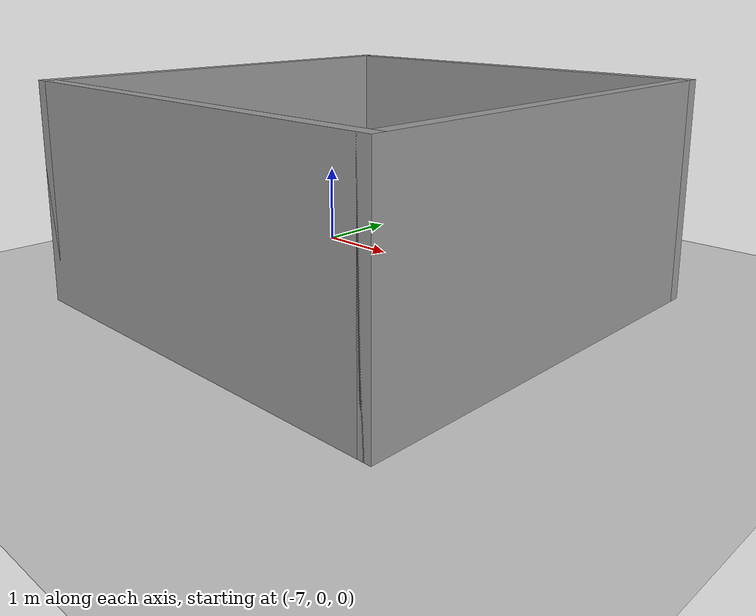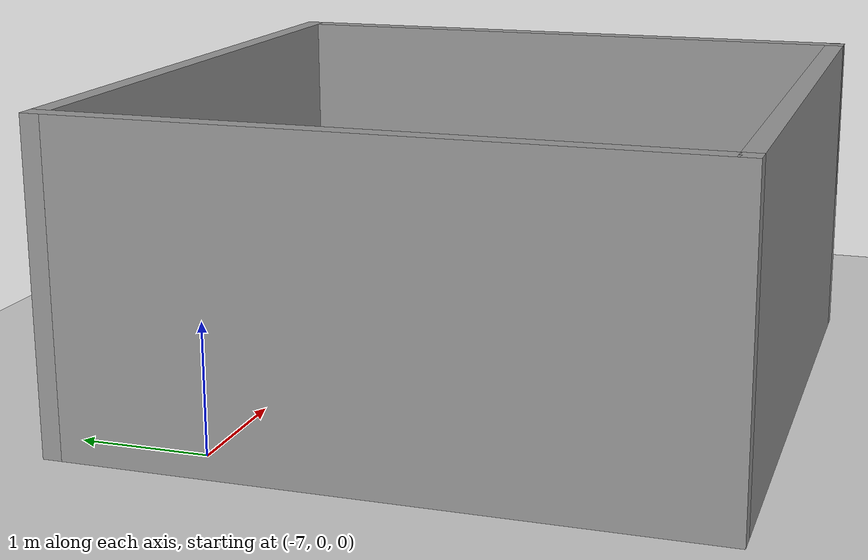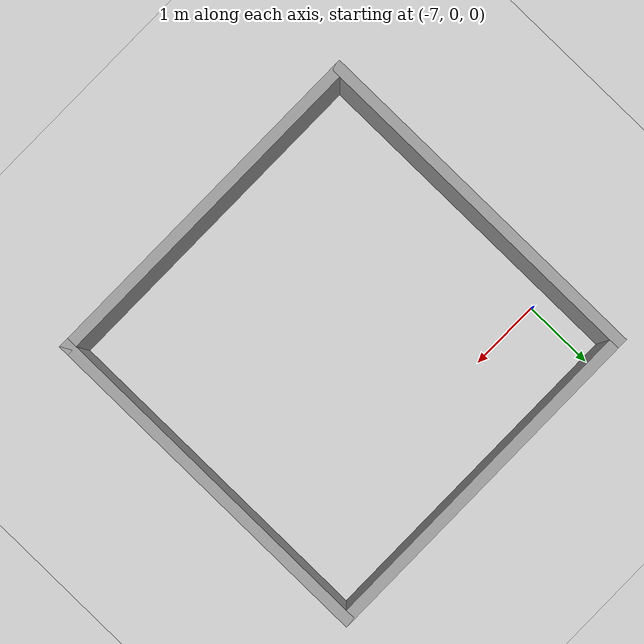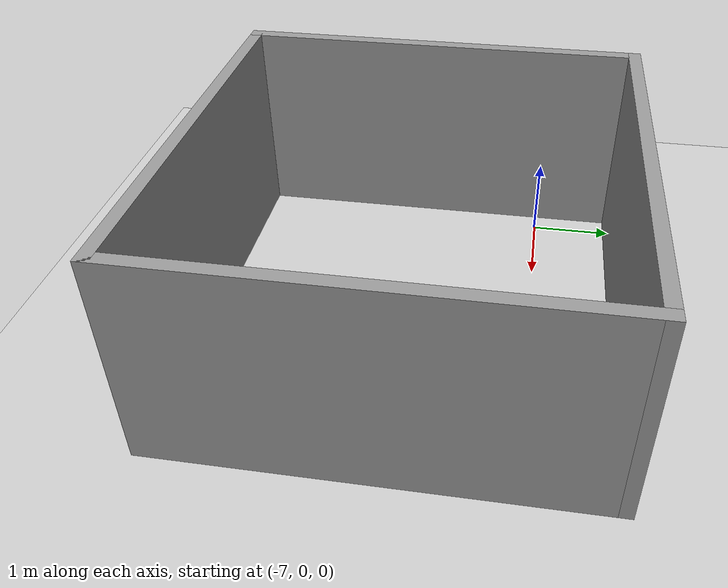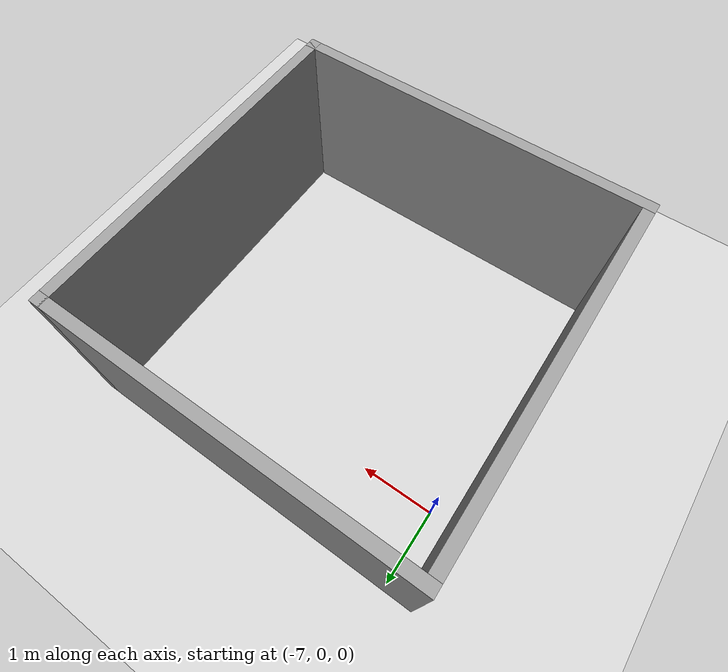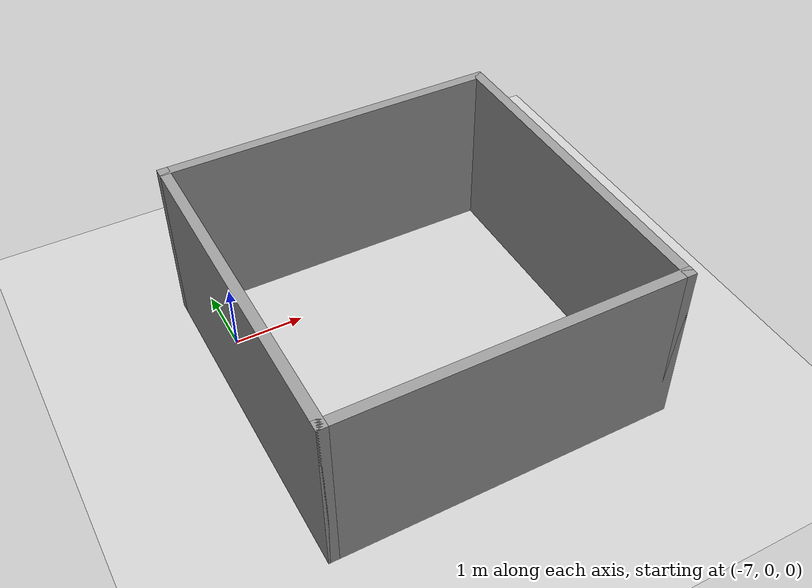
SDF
<sdf version="1.7">
 <world name="default">
  <scene><ambient>0.4 0.4 0.4 1</ambient><background>0.7 0.7 0.7 1</background><shadows>1</shadows></scene>
  <light name="sun" type="directional">
   <pose>0 0 10 0 -0 0</pose>
   <diffuse>0.8 0.8 0.8 1</diffuse>
   <specular>0.2 0.2 0.2 1</specular>
   <attenuation>
    <range>1000</range>
    <constant>0.9</constant>
    <linear>0.01</linear>
    <quadratic>0.001</quadratic>
   </attenuation>
   <direction>-0.5 0.1 -0.9</direction>
   <spot><inner_angle>0</inner_angle><outer_angle>0</outer_angle><falloff>0</falloff></spot>
  </light>
  <model name="ground_plane">
   <static>1</static>
   <link name="link">
    <collision name="collision">
     <geometry><plane><normal>0 0 1</normal><size>100 100</size></plane></geometry>
     <surface>
      <contact><collide_bitmask>65535</collide_bitmask></contact>
      <friction><ode><mu>100</mu><mu2>50</mu2></ode></friction>
     </surface>
    </collision>
    <visual name="visual">
     <cast_shadows>0</cast_shadows>
     <geometry><plane><normal>0 0 1</normal><size>100 100</size></plane></geometry>
     <material>
      <script><uri>file://media/materials/scripts/gazebo.material</uri><name>Gazebo/Grey</name></script>
     </material>
    </visual>
   </link>
  </model>
  <physics type="ode">
   <real_time_update_rate>1000</real_time_update_rate>
   <max_step_size>0.001</max_step_size>
   <real_time_factor>1</real_time_factor>
   <ode>
    <solver>
     <type>quick</type>
     <iters>150</iters>
     <precon_iters>0</precon_iters>
     <sor>1.4</sor>
     <use_dynamic_moi_rescaling>1</use_dynamic_moi_rescaling>
    </solver>
    <constraints>
     <cfm>1e-05</cfm>
     <erp>0.2</erp>
     <contact_max_correcting_vel>2000</contact_max_correcting_vel>
     <contact_surface_layer>0.01</contact_surface_layer>
    </constraints>
   </ode>
  </physics>
  <gravity>0 0 -9.8</gravity>
  <magnetic_field>6e-06 2.3e-05 -4.2e-05</magnetic_field>
  <atmosphere type="adiabatic"/>
  <spherical_coordinates>
   <surface_model>EARTH_WGS84</surface_model>
   <latitude_deg>0</latitude_deg>
   <longitude_deg>0</longitude_deg>
   <elevation>0</elevation>
   <heading_deg>0</heading_deg>
  </spherical_coordinates>
  <model name="5m_room">
   <pose>-3.50426 -1.1439 0 0 -0 0</pose>
   <link name="Wall_0">
    <collision name="Wall_0_Collision">
     <geometry><box><size>5 0.15 2.5</size></box></geometry>
     <pose>0 0 1.25 0 -0 0</pose>
    </collision>
    <visual name="Wall_0_Visual">
     <pose>0 0 1.25 0 -0 0</pose>
     <geometry><box><size>5 0.15 2.5</size></box></geometry>
     <material>
      <script><uri>file://media/materials/scripts/gazebo.material</uri><name>Gazebo/Grey</name></script>
      <ambient>0.827451 0.843137 0.811765 1</ambient>
     </material>
     <meta><layer>0</layer></meta>
    </visual>
    <pose>-1.4025 2.1575 0 0 -0 3.14159</pose>
   </link>
   <link name="Wall_1">
    <collision name="Wall_1_Collision">
     <geometry><box><size>5 0.15 2.5</size></box></geometry>
     <pose>0 0 1.25 0 -0 0</pose>
    </collision>
    <visual name="Wall_1_Visual">
     <pose>0 0 1.25 0 -0 0</pose>
     <geometry><box><size>5 0.15 2.5</size></box></geometry>
     <material>
      <script><uri>file://media/materials/scripts/gazebo.material</uri><name>Gazebo/Grey</name></script>
      <ambient>0.827451 0.843137 0.811765 1</ambient>
     </material>
     <meta><layer>0</layer></meta>
    </visual>
    <pose>-3.8275 -0.2675 0 0 -0 -1.5708</pose>
   </link>
   <link name="Wall_2">
    <collision name="Wall_2_Collision">
     <geometry><box><size>5 0.15 2.5</size></box></geometry>
     <pose>0 0 1.25 0 -0 0</pose>
    </collision>
    <visual name="Wall_2_Visual">
     <pose>0 0 1.25 0 -0 0</pose>
     <geometry><box><size>5 0.15 2.5</size></box></geometry>
     <material>
      <script><uri>file://media/materials/scripts/gazebo.material</uri><name>Gazebo/Grey</name></script>
      <ambient>0.827451 0.843137 0.811765 1</ambient>
     </material>
     <meta><layer>0</layer></meta>
    </visual>
    <pose>-1.4025 -2.6925 0 0 -0 0</pose>
   </link>
   <link name="Wall_3">
    <collision name="Wall_3_Collision">
     <geometry><box><size>5 0.15 2.5</size></box></geometry>
     <pose>0 0 1.25 0 -0 0</pose>
    </collision>
    <visual name="Wall_3_Visual">
     <pose>0 0 1.25 0 -0 0</pose>
     <geometry><box><size>5 0.15 2.5</size></box></geometry>
     <material>
      <script><uri>file://media/materials/scripts/gazebo.material</uri><name>Gazebo/Grey</name></script>
      <ambient>0.827451 0.843137 0.811765 1</ambient>
     </material>
     <meta><layer>0</layer></meta>
    </visual>
    <pose>1.0225 -0.2675 0 0 -0 1.5708</pose>
   </link>
   <static>1</static>
  </model>
 </world>
</sdf>
